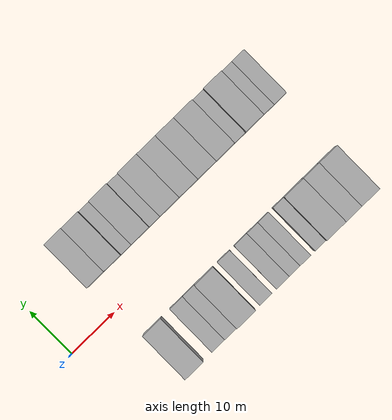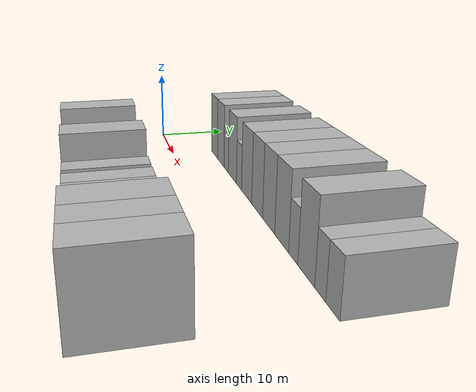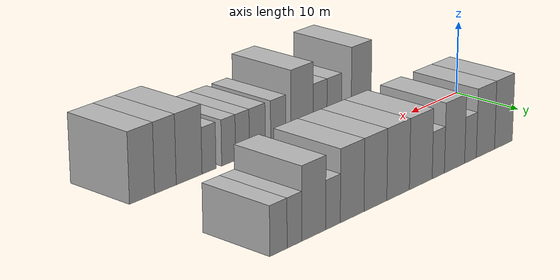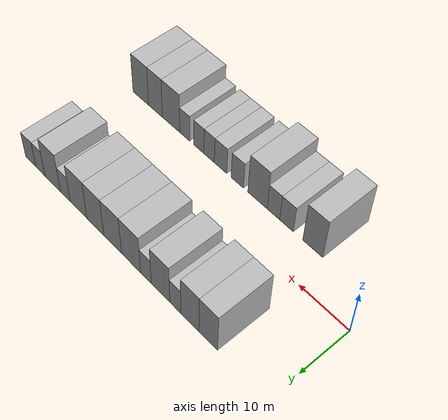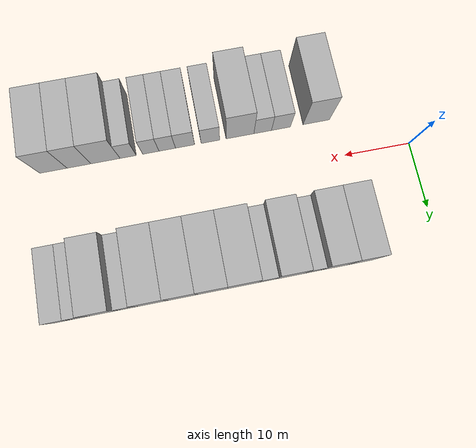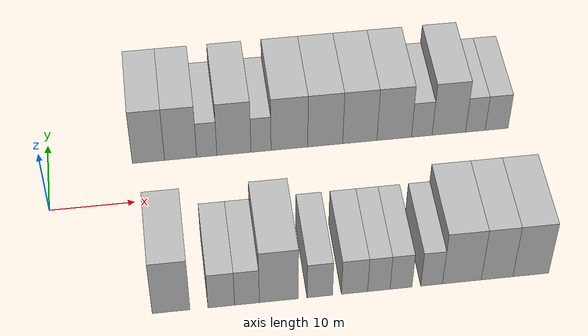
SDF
<sdf version="1.6">
 <world name="default">
  <model name="building_1">
   <static>1</static>
   <pose>11.9366 11.0000 0 0.000000 0.000000 1.570796</pose>
   <link name="link">
    <pose>0 0 4.50 0 0 0</pose>
    <collision name="collision"><geometry><box><size>10.0000 3.8731 9.0000</size></box></geometry></collision>
    <visual name="visual">
     <cast_shadows>0</cast_shadows>
     <geometry><box><size>10.0000 3.8731 9.0000</size></box></geometry>
     <material>
      <script>
       <uri>model://HANNAS_wall/materials/scripts</uri>
       <uri>model://HANNAS_wall/materials/textures</uri>
       <name>vrc/HANNAS_wall</name>
      </script>
     </material>
    </visual>
   </link>
  </model>
  <model name="building_2">
   <static>1</static>
   <pose>15.8093 11.0000 0 0.000000 0.000000 1.570796</pose>
   <link name="link">
    <pose>0 0 4.50 0 0 0</pose>
    <collision name="collision"><geometry><box><size>10.0000 3.8724 9.0000</size></box></geometry></collision>
    <visual name="visual">
     <cast_shadows>0</cast_shadows>
     <geometry><box><size>10.0000 3.8724 9.0000</size></box></geometry>
     <material>
      <script>
       <uri>model://HANNAS_wall/materials/scripts</uri>
       <uri>model://HANNAS_wall/materials/textures</uri>
       <name>vrc/HANNAS_wall</name>
      </script>
     </material>
    </visual>
   </link>
  </model>
  <model name="building_3">
   <static>1</static>
   <pose>18.9615 11.0000 0 0.000000 0.000000 1.570796</pose>
   <link name="link">
    <pose>0 0 3.00 0 0 0</pose>
    <collision name="collision"><geometry><box><size>10.0000 2.4319 6.0000</size></box></geometry></collision>
    <visual name="visual">
     <cast_shadows>0</cast_shadows>
     <geometry><box><size>10.0000 2.4319 6.0000</size></box></geometry>
     <material>
      <script>
       <uri>model://HANNAS_wall/materials/scripts</uri>
       <uri>model://HANNAS_wall/materials/textures</uri>
       <name>vrc/HANNAS_wall</name>
      </script>
     </material>
    </visual>
   </link>
  </model>
  <model name="building_4">
   <static>1</static>
   <pose>22.2412 11.0000 0 0.000000 0.000000 1.570796</pose>
   <link name="link">
    <pose>0 0 4.50 0 0 0</pose>
    <collision name="collision"><geometry><box><size>10.0000 4.1276 9.0000</size></box></geometry></collision>
    <visual name="visual">
     <cast_shadows>0</cast_shadows>
     <geometry><box><size>10.0000 4.1276 9.0000</size></box></geometry>
     <material>
      <script>
       <uri>model://HANNAS_wall/materials/scripts</uri>
       <uri>model://HANNAS_wall/materials/textures</uri>
       <name>vrc/HANNAS_wall</name>
      </script>
     </material>
    </visual>
   </link>
  </model>
  <model name="building_5">
   <static>1</static>
   <pose>25.5283 11.0000 0 0.000000 0.000000 1.570796</pose>
   <link name="link">
    <pose>0 0 3.00 0 0 0</pose>
    <collision name="collision"><geometry><box><size>10.0000 2.4465 6.0000</size></box></geometry></collision>
    <visual name="visual">
     <cast_shadows>0</cast_shadows>
     <geometry><box><size>10.0000 2.4465 6.0000</size></box></geometry>
     <material>
      <script>
       <uri>model://HANNAS_wall/materials/scripts</uri>
       <uri>model://HANNAS_wall/materials/textures</uri>
       <name>vrc/HANNAS_wall</name>
      </script>
     </material>
    </visual>
   </link>
  </model>
  <model name="building_6">
   <static>1</static>
   <pose>28.9808 11.0000 0 0.000000 0.000000 1.570796</pose>
   <link name="link">
    <pose>0 0 4.50 0 0 0</pose>
    <collision name="collision"><geometry><box><size>10.0000 4.4585 9.0000</size></box></geometry></collision>
    <visual name="visual">
     <cast_shadows>0</cast_shadows>
     <geometry><box><size>10.0000 4.4585 9.0000</size></box></geometry>
     <material>
      <script>
       <uri>model://HANNAS_wall/materials/scripts</uri>
       <uri>model://HANNAS_wall/materials/textures</uri>
       <name>vrc/HANNAS_wall</name>
      </script>
     </material>
    </visual>
   </link>
  </model>
  <model name="building_7">
   <static>1</static>
   <pose>33.3568 11.0000 0 0.000000 0.000000 1.570796</pose>
   <link name="link">
    <pose>0 0 4.50 0 0 0</pose>
    <collision name="collision"><geometry><box><size>10.0000 4.2935 9.0000</size></box></geometry></collision>
    <visual name="visual">
     <cast_shadows>0</cast_shadows>
     <geometry><box><size>10.0000 4.2935 9.0000</size></box></geometry>
     <material>
      <script>
       <uri>model://HANNAS_wall/materials/scripts</uri>
       <uri>model://HANNAS_wall/materials/textures</uri>
       <name>vrc/HANNAS_wall</name>
      </script>
     </material>
    </visual>
   </link>
  </model>
  <model name="building_8">
   <static>1</static>
   <pose>37.6068 11.0000 0 0.000000 0.000000 1.570796</pose>
   <link name="link">
    <pose>0 0 4.50 0 0 0</pose>
    <collision name="collision"><geometry><box><size>10.0000 4.2064 9.0000</size></box></geometry></collision>
    <visual name="visual">
     <cast_shadows>0</cast_shadows>
     <geometry><box><size>10.0000 4.2064 9.0000</size></box></geometry>
     <material>
      <script>
       <uri>model://HANNAS_wall/materials/scripts</uri>
       <uri>model://HANNAS_wall/materials/textures</uri>
       <name>vrc/HANNAS_wall</name>
      </script>
     </material>
    </visual>
   </link>
  </model>
  <model name="building_9">
   <static>1</static>
   <pose>41.8423 11.0000 0 0.000000 0.000000 1.570796</pose>
   <link name="link">
    <pose>0 0 4.50 0 0 0</pose>
    <collision name="collision"><geometry><box><size>10.0000 4.2647 9.0000</size></box></geometry></collision>
    <visual name="visual">
     <cast_shadows>0</cast_shadows>
     <geometry><box><size>10.0000 4.2647 9.0000</size></box></geometry>
     <material>
      <script>
       <uri>model://HANNAS_wall/materials/scripts</uri>
       <uri>model://HANNAS_wall/materials/textures</uri>
       <name>vrc/HANNAS_wall</name>
      </script>
     </material>
    </visual>
   </link>
  </model>
  <model name="building_10">
   <static>1</static>
   <pose>45.2509 11.0000 0 0.000000 0.000000 1.570796</pose>
   <link name="link">
    <pose>0 0 3.00 0 0 0</pose>
    <collision name="collision"><geometry><box><size>10.0000 2.5525 6.0000</size></box></geometry></collision>
    <visual name="visual">
     <cast_shadows>0</cast_shadows>
     <geometry><box><size>10.0000 2.5525 6.0000</size></box></geometry>
     <material>
      <script>
       <uri>model://HANNAS_wall/materials/scripts</uri>
       <uri>model://HANNAS_wall/materials/textures</uri>
       <name>vrc/HANNAS_wall</name>
      </script>
     </material>
    </visual>
   </link>
  </model>
  <model name="building_11">
   <static>1</static>
   <pose>48.6036 11.0000 0 0.000000 0.000000 1.570796</pose>
   <link name="link">
    <pose>0 0 4.50 0 0 0</pose>
    <collision name="collision"><geometry><box><size>10.0000 4.1528 9.0000</size></box></geometry></collision>
    <visual name="visual">
     <cast_shadows>0</cast_shadows>
     <geometry><box><size>10.0000 4.1528 9.0000</size></box></geometry>
     <material>
      <script>
       <uri>model://HANNAS_wall/materials/scripts</uri>
       <uri>model://HANNAS_wall/materials/textures</uri>
       <name>vrc/HANNAS_wall</name>
      </script>
     </material>
    </visual>
   </link>
  </model>
  <model name="building_12">
   <static>1</static>
   <pose>51.9011 11.0000 0 0.000000 0.000000 1.570796</pose>
   <link name="link">
    <pose>0 0 3.00 0 0 0</pose>
    <collision name="collision"><geometry><box><size>10.0000 2.4423 6.0000</size></box></geometry></collision>
    <visual name="visual">
     <cast_shadows>0</cast_shadows>
     <geometry><box><size>10.0000 2.4423 6.0000</size></box></geometry>
     <material>
      <script>
       <uri>model://HANNAS_wall/materials/scripts</uri>
       <uri>model://HANNAS_wall/materials/textures</uri>
       <name>vrc/HANNAS_wall</name>
      </script>
     </material>
    </visual>
   </link>
  </model>
  <model name="building_13">
   <static>1</static>
   <pose>54.5475 11.0000 0 0.000000 0.000000 1.570796</pose>
   <link name="link">
    <pose>0 0 3.00 0 0 0</pose>
    <collision name="collision"><geometry><box><size>10.0000 2.8504 6.0000</size></box></geometry></collision>
    <visual name="visual">
     <cast_shadows>0</cast_shadows>
     <geometry><box><size>10.0000 2.8504 6.0000</size></box></geometry>
     <material>
      <script>
       <uri>model://HANNAS_wall/materials/scripts</uri>
       <uri>model://HANNAS_wall/materials/textures</uri>
       <name>vrc/HANNAS_wall</name>
      </script>
     </material>
    </visual>
   </link>
  </model>
  <model name="building_51">
   <static>1</static>
   <pose>13.0851 -11.0000 0 0.000000 0.000000 1.570796</pose>
   <link name="link">
    <pose>0 0 4.50 0 0 0</pose>
    <collision name="collision"><geometry><box><size>10.0000 4.1702 9.0000</size></box></geometry></collision>
    <visual name="visual">
     <cast_shadows>0</cast_shadows>
     <geometry><box><size>10.0000 4.1702 9.0000</size></box></geometry>
     <material>
      <script>
       <uri>model://HANNAS_wall/materials/scripts</uri>
       <uri>model://HANNAS_wall/materials/textures</uri>
       <name>vrc/HANNAS_wall</name>
      </script>
     </material>
    </visual>
   </link>
  </model>
  <model name="building_52">
   <static>1</static>
   <pose>18.6510 -11.0000 0 0.000000 0.000000 1.570796</pose>
   <link name="link">
    <pose>0 0 3.00 0 0 0</pose>
    <collision name="collision"><geometry><box><size>10.0000 2.9616 6.0000</size></box></geometry></collision>
    <visual name="visual">
     <cast_shadows>0</cast_shadows>
     <geometry><box><size>10.0000 2.9616 6.0000</size></box></geometry>
     <material>
      <script>
       <uri>model://HANNAS_wall/materials/scripts</uri>
       <uri>model://HANNAS_wall/materials/textures</uri>
       <name>vrc/HANNAS_wall</name>
      </script>
     </material>
    </visual>
   </link>
  </model>
  <model name="building_53">
   <static>1</static>
   <pose>21.5071 -11.0000 0 0.000000 0.000000 1.570796</pose>
   <link name="link">
    <pose>0 0 3.00 0 0 0</pose>
    <collision name="collision"><geometry><box><size>10.0000 2.7506 6.0000</size></box></geometry></collision>
    <visual name="visual">
     <cast_shadows>0</cast_shadows>
     <geometry><box><size>10.0000 2.7506 6.0000</size></box></geometry>
     <material>
      <script>
       <uri>model://HANNAS_wall/materials/scripts</uri>
       <uri>model://HANNAS_wall/materials/textures</uri>
       <name>vrc/HANNAS_wall</name>
      </script>
     </material>
    </visual>
   </link>
  </model>
  <model name="building_54">
   <static>1</static>
   <pose>25.0486 -11.0000 0 0.000000 0.000000 1.570796</pose>
   <link name="link">
    <pose>0 0 4.50 0 0 0</pose>
    <collision name="collision"><geometry><box><size>10.0000 4.3323 9.0000</size></box></geometry></collision>
    <visual name="visual">
     <cast_shadows>0</cast_shadows>
     <geometry><box><size>10.0000 4.3323 9.0000</size></box></geometry>
     <material>
      <script>
       <uri>model://HANNAS_wall/materials/scripts</uri>
       <uri>model://HANNAS_wall/materials/textures</uri>
       <name>vrc/HANNAS_wall</name>
      </script>
     </material>
    </visual>
   </link>
  </model>
  <model name="building_55">
   <static>1</static>
   <pose>29.6472 -11.0000 0 0.000000 0.000000 1.570796</pose>
   <link name="link">
    <pose>0 0 3.00 0 0 0</pose>
    <collision name="collision"><geometry><box><size>10.0000 2.8649 6.0000</size></box></geometry></collision>
    <visual name="visual">
     <cast_shadows>0</cast_shadows>
     <geometry><box><size>10.0000 2.8649 6.0000</size></box></geometry>
     <material>
      <script>
       <uri>model://HANNAS_wall/materials/scripts</uri>
       <uri>model://HANNAS_wall/materials/textures</uri>
       <name>vrc/HANNAS_wall</name>
      </script>
     </material>
    </visual>
   </link>
  </model>
  <model name="building_56">
   <static>1</static>
   <pose>33.5573 -11.0000 0 0.000000 0.000000 1.570796</pose>
   <link name="link">
    <pose>0 0 3.00 0 0 0</pose>
    <collision name="collision"><geometry><box><size>10.0000 2.9553 6.0000</size></box></geometry></collision>
    <visual name="visual">
     <cast_shadows>0</cast_shadows>
     <geometry><box><size>10.0000 2.9553 6.0000</size></box></geometry>
     <material>
      <script>
       <uri>model://HANNAS_wall/materials/scripts</uri>
       <uri>model://HANNAS_wall/materials/textures</uri>
       <name>vrc/HANNAS_wall</name>
      </script>
     </material>
    </visual>
   </link>
  </model>
  <model name="building_57">
   <static>1</static>
   <pose>36.3014 -11.0000 0 0.000000 0.000000 1.570796</pose>
   <link name="link">
    <pose>0 0 3.00 0 0 0</pose>
    <collision name="collision"><geometry><box><size>10.0000 2.5328 6.0000</size></box></geometry></collision>
    <visual name="visual">
     <cast_shadows>0</cast_shadows>
     <geometry><box><size>10.0000 2.5328 6.0000</size></box></geometry>
     <material>
      <script>
       <uri>model://HANNAS_wall/materials/scripts</uri>
       <uri>model://HANNAS_wall/materials/textures</uri>
       <name>vrc/HANNAS_wall</name>
      </script>
     </material>
    </visual>
   </link>
  </model>
  <model name="building_58">
   <static>1</static>
   <pose>38.8118 -11.0000 0 0.000000 0.000000 1.570796</pose>
   <link name="link">
    <pose>0 0 3.00 0 0 0</pose>
    <collision name="collision"><geometry><box><size>10.0000 2.4882 6.0000</size></box></geometry></collision>
    <visual name="visual">
     <cast_shadows>0</cast_shadows>
     <geometry><box><size>10.0000 2.4882 6.0000</size></box></geometry>
     <material>
      <script>
       <uri>model://HANNAS_wall/materials/scripts</uri>
       <uri>model://HANNAS_wall/materials/textures</uri>
       <name>vrc/HANNAS_wall</name>
      </script>
     </material>
    </visual>
   </link>
  </model>
  <model name="building_59">
   <static>1</static>
   <pose>42.2905 -11.0000 0 0.000000 0.000000 1.570796</pose>
   <link name="link">
    <pose>0 0 3.00 0 0 0</pose>
    <collision name="collision"><geometry><box><size>10.0000 2.4692 6.0000</size></box></geometry></collision>
    <visual name="visual">
     <cast_shadows>0</cast_shadows>
     <geometry><box><size>10.0000 2.4692 6.0000</size></box></geometry>
     <material>
      <script>
       <uri>model://HANNAS_wall/materials/scripts</uri>
       <uri>model://HANNAS_wall/materials/textures</uri>
       <name>vrc/HANNAS_wall</name>
      </script>
     </material>
    </visual>
   </link>
  </model>
  <model name="building_60">
   <static>1</static>
   <pose>45.7388 -11.0000 0 0.000000 0.000000 1.570796</pose>
   <link name="link">
    <pose>0 0 4.50 0 0 0</pose>
    <collision name="collision"><geometry><box><size>10.0000 4.4273 9.0000</size></box></geometry></collision>
    <visual name="visual">
     <cast_shadows>0</cast_shadows>
     <geometry><box><size>10.0000 4.4273 9.0000</size></box></geometry>
     <material>
      <script>
       <uri>model://HANNAS_wall/materials/scripts</uri>
       <uri>model://HANNAS_wall/materials/textures</uri>
       <name>vrc/HANNAS_wall</name>
      </script>
     </material>
    </visual>
   </link>
  </model>
  <model name="building_61">
   <static>1</static>
   <pose>49.7614 -11.0000 0 0.000000 0.000000 1.570796</pose>
   <link name="link">
    <pose>0 0 4.50 0 0 0</pose>
    <collision name="collision"><geometry><box><size>10.0000 3.6179 9.0000</size></box></geometry></collision>
    <visual name="visual">
     <cast_shadows>0</cast_shadows>
     <geometry><box><size>10.0000 3.6179 9.0000</size></box></geometry>
     <material>
      <script>
       <uri>model://HANNAS_wall/materials/scripts</uri>
       <uri>model://HANNAS_wall/materials/textures</uri>
       <name>vrc/HANNAS_wall</name>
      </script>
     </material>
    </visual>
   </link>
  </model>
  <model name="building_62">
   <static>1</static>
   <pose>53.6263 -11.0000 0 0.000000 0.000000 1.570796</pose>
   <link name="link">
    <pose>0 0 4.50 0 0 0</pose>
    <collision name="collision"><geometry><box><size>10.0000 4.1120 9.0000</size></box></geometry></collision>
    <visual name="visual">
     <cast_shadows>0</cast_shadows>
     <geometry><box><size>10.0000 4.1120 9.0000</size></box></geometry>
     <material>
      <script>
       <uri>model://HANNAS_wall/materials/scripts</uri>
       <uri>model://HANNAS_wall/materials/textures</uri>
       <name>vrc/HANNAS_wall</name>
      </script>
     </material>
    </visual>
   </link>
  </model>
 </world>
</sdf>
